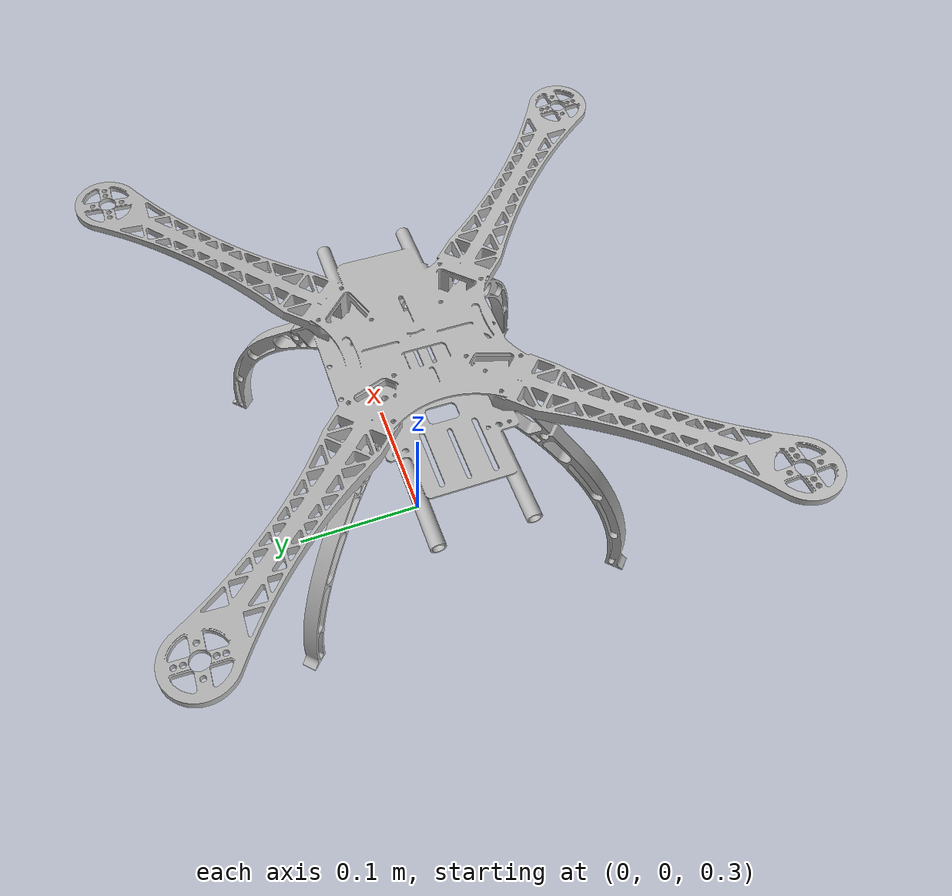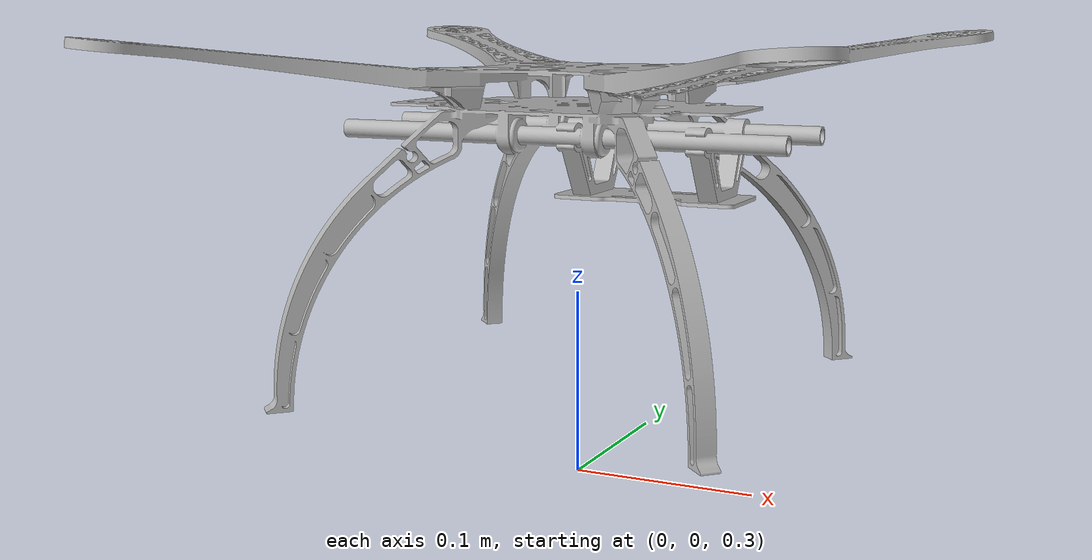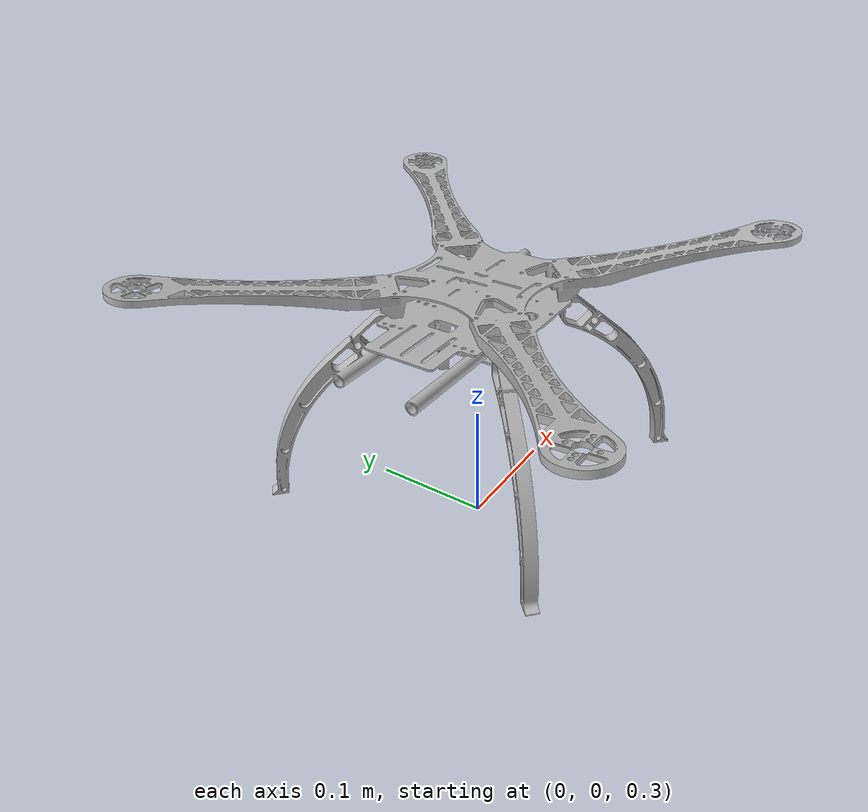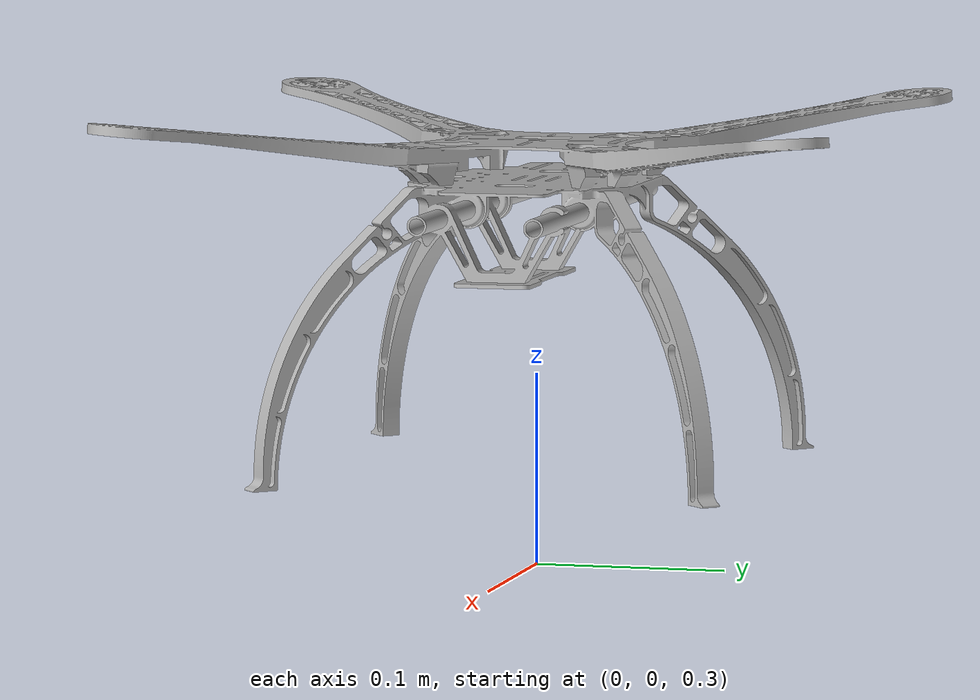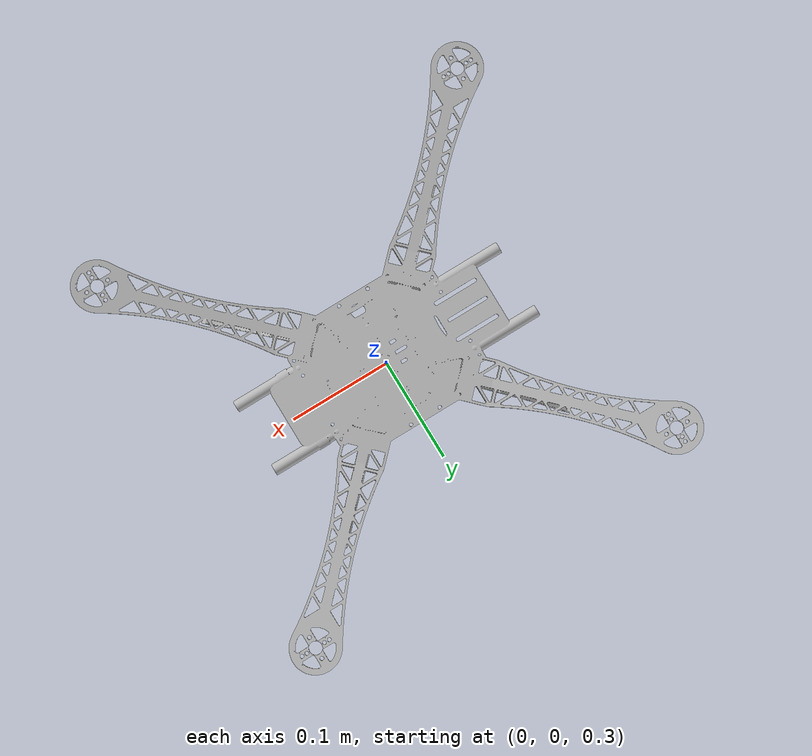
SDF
<?xml version="1.0" ?>
<sdf version="1.10">

  <model name="quadricoptero">

    <!-- Corpo físico principal -->
    <link name="base_link">

      <pose>0 0 0.5 0 0 0</pose>

      <inertial>
        <mass>1.5</mass>
        <inertia>
          <ixx>0.02</ixx>
          <iyy>0.02</iyy>
          <izz>0.03</izz>
          <ixy>0</ixy>
          <ixz>0</ixz>
          <iyz>0</iyz>
        </inertia>
      </inertial>

      <!-- Colisão simplificada -->
      <collision name="collision">
        <geometry>
          <box>
            <size>0.40 0.40 0.15</size>
          </box>
        </geometry>
      </collision>

      <!-- Modelo 3D do S500 vindo do Ansys -->
      <visual name="s500_visual">

        <geometry>
          <mesh>
            <uri>model://quadricoptero/meshes/S500_Frame.stl</uri>
            <scale>1 1 1</scale>
          </mesh>
        </geometry>

      </visual>

    </link>

  </model>

</sdf>
